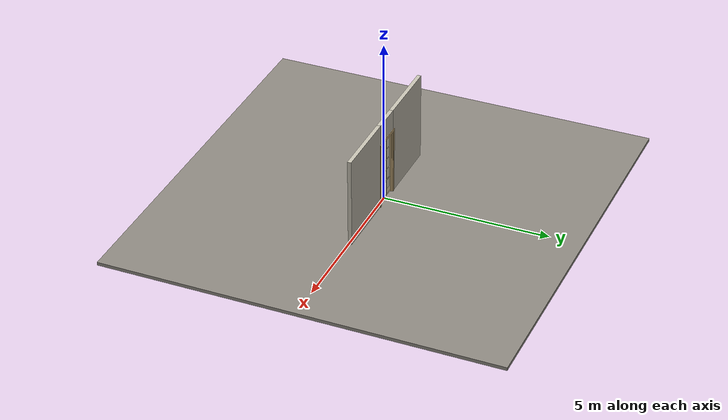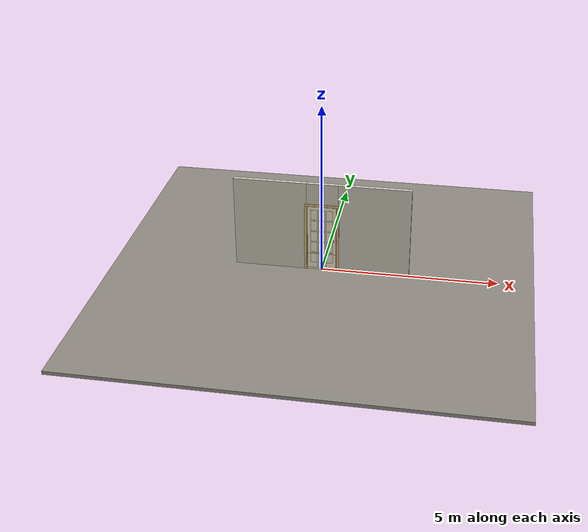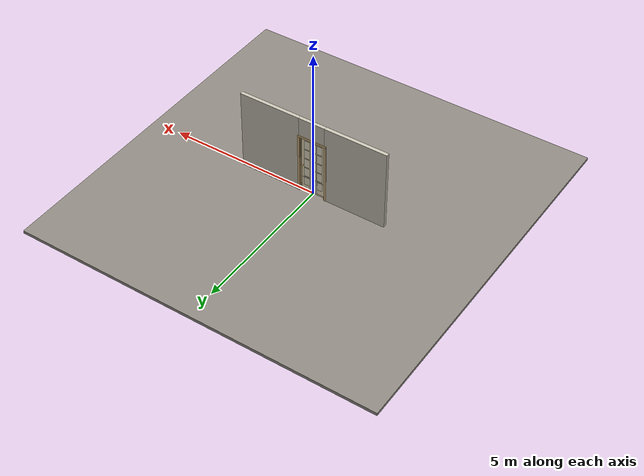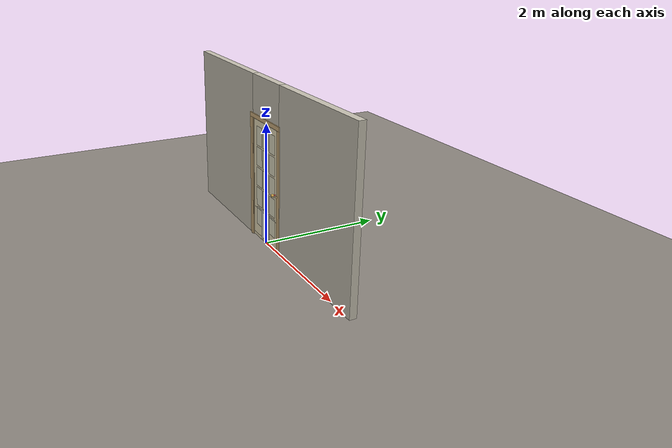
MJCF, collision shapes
<?xml version="1.0" ?>
<mujoco model="db0734_swing_single_full">
  <compiler angle="radian" meshdir="../../hardware" texturedir="../../textures" autolimits="true" inertiafromgeom="false"/>
  <option timestep="0.002" integrator="implicitfast" cone="elliptic" impratio="10" noslip_iterations="3">
    <flag multiccd="enable"/>
  </option>
  <size memory="16M"/>
  <default>
    <geom condim="4" solref="0.005 1" solimp="0.95 0.99 0.001"/>
    <joint solreflimit="0.005 1" solimplimit="0.95 0.99 0.001"/>
    <tendon solreflimit="0.005 1"/>
    <equality solref="0.002 1"/>
  </default>
  <visual>
    <headlight ambient="0.4 0.4 0.4" diffuse="0.7 0.7 0.7" specular="0.2 0.2 0.2"/>
    <quality shadowsize="4096"/>
    <map znear="0.01" zfar="60"/>
  </visual>
  <asset>
    <mesh name="hinge_96510cf394" file="hinge_96510cf394.obj"/>
    <mesh name="hinge_jamb_7fd4ca52b2" file="hinge_jamb_7fd4ca52b2.obj"/>
    <mesh name="knob_d1888f6f03" file="knob_d1888f6f03.obj"/>
    <material name="mat_floor" rgba="0.55 0.53 0.5 1" specular="0.2" shininess="0.15" reflectance="0"/>
    <material name="mat_wall" rgba="0.78 0.76 0.7 1" specular="0.2" shininess="0.1" reflectance="0"/>
    <material name="mat_leaf" rgba="0.93 0.88 0.74 1" specular="0.2" shininess="0.59" reflectance="0"/>
    <material name="mat_glass" rgba="0.85 0.92 0.95 0.25" specular="0.2" shininess="0.95" reflectance="0.1"/>
    <material name="mat_hinge" rgba="0.65 0.66 0.68 1" specular="0.74" shininess="0.5" reflectance="0.36"/>
    <material name="mat_op_brass" rgba="0.85 0.66 0.3 1" specular="0.8" shininess="0.75" reflectance="0.4"/>
    <material name="mat_trim" rgba="0.85 0.66 0.3 1" specular="0.8" shininess="0.75" reflectance="0.4"/>
    <material name="mat_bolt" rgba="0.85 0.66 0.3 1" specular="0.8" shininess="0.75" reflectance="0.4"/>
    <material name="mat_frame" rgba="0.82 0.7 0.5 1" specular="0.2" shininess="0.45" reflectance="0"/>
    <material name="mat_petframe" rgba="0.92 0.92 0.9 1" specular="0.2" shininess="0.6" reflectance="0"/>
    <material name="mat_petflap" rgba="0.85 0.9 0.95 0.45" specular="0.2" shininess="0.7" reflectance="0.1"/>
    <texture name="skybox" type="skybox" builtin="gradient" rgb1="0.6 0.7 0.85" rgb2="0.9 0.92 0.95" width="256" height="256"/>
  </asset>
  <worldbody>
    <light name="sun" pos="1.5 -2.5 4" dir="-0.3 0.5 -0.8" directional="true" diffuse="0.8 0.8 0.8" specular="0.3 0.3 0.3" castshadow="true"/>
    <light name="fill" pos="-1.5 2.5 3" dir="0.3 -0.5 -0.7" directional="true" diffuse="0.35 0.35 0.4" castshadow="false"/>
    <camera name="robot_view" pos="0 -2.465125 1.698475" xyaxes="1 0 0 0 0.26963 0.962964" fovy="52"/>
    <camera name="far_view" pos="0 2.531125 1.698475" xyaxes="-1 0 0 0 -0.26963 0.962964" fovy="52"/>
    <camera name="iso" pos="1.898575 -2.065425 2.098175" xyaxes="0.741536 0.670913 0 -0.242917 0.268487 0.932151" fovy="46"/>
    <camera name="detail_handle" pos="0.526 -0.864 1.245" xyaxes="0.97561 0.219512 0 -0.070934 0.315262 0.94635" fovy="38"/>
    <geom name="floor" type="box" size="6 6 0.05" pos="0 0 -0.05" material="mat_floor" group="0" contype="1" conaffinity="1" friction="0.8 0.005 0.0001" density="2400"/>
    <geom name="wall_left" type="box" size="1.0355 0.0575 1.35" pos="-1.4645 0.033 1.35" material="mat_wall" group="0" contype="1" conaffinity="1" friction="0.6 0.005 0.0001" density="800"/>
    <geom name="wall_right" type="box" size="1.0205 0.0575 1.35" pos="1.4795 0.033 1.35" material="mat_wall" group="0" contype="1" conaffinity="1" friction="0.6 0.005 0.0001" density="800"/>
    <geom name="wall_header" type="box" size="0.444 0.0575 0.3265" pos="0.015 0.033 2.3735" material="mat_wall" group="0" contype="1" conaffinity="1" friction="0.6 0.005 0.0001" density="800"/>
    <geom name="hinge_0_jamb" type="mesh" mesh="hinge_jamb_7fd4ca52b2" pos="-0.407 -0.0245 0.259" material="mat_hinge" group="1" contype="0" conaffinity="0" density="7850"/>
    <geom name="hinge_1_jamb" type="mesh" mesh="hinge_jamb_7fd4ca52b2" pos="-0.407 -0.0245 1.814" material="mat_hinge" group="1" contype="0" conaffinity="0" density="7850"/>
    <geom name="jamb_hinge" type="box" size="0.0095 0.0575 0.999" pos="-0.4195 0.033 0.999" material="mat_frame" group="0" contype="1" conaffinity="1" friction="0.6 0.005 0.0001" density="400"/>
    <geom name="strike_965_wall_n" type="box" size="0.0245 0.041325 0.0167" pos="0.4345 0.049175 0.965" material="mat_frame" group="0" contype="1" conaffinity="1" friction="0.6 0.005 0.0001" density="400"/>
    <geom name="strike_965_wall_p" type="box" size="0.0245 0.008 0.0167" pos="0.4345 -0.01585 0.965" material="mat_frame" group="0" contype="1" conaffinity="1" friction="0.6 0.005 0.0001" density="400"/>
    <geom name="strike_965_ramp" type="box" size="0.0245 0.01649 0.0167" pos="0.439136 -0.028673 0.965" quat="0.977148 0 0 0.212558" material="mat_frame" group="0" contype="1" conaffinity="1" friction="0.12 0.005 0.0001" density="400"/>
    <geom name="strike_965_back" type="box" size="0.01615 0.00785 0.0167" pos="0.44285 0 0.965" material="mat_frame" group="0" contype="1" conaffinity="1" friction="0.6 0.005 0.0001" density="400"/>
    <geom name="jamb_strike_0" type="box" size="0.0245 0.0575 0.47415" pos="0.4345 0.033 0.47415" material="mat_frame" group="0" contype="1" conaffinity="1" friction="0.6 0.005 0.0001" density="400"/>
    <geom name="jamb_strike_1" type="box" size="0.0245 0.0575 0.50815" pos="0.4345 0.033 1.48985" material="mat_frame" group="0" contype="1" conaffinity="1" friction="0.6 0.005 0.0001" density="400"/>
    <geom name="jamb_head" type="box" size="0.444 0.0575 0.0095" pos="0.015 0.033 2.0075" material="mat_frame" group="0" contype="1" conaffinity="1" friction="0.6 0.005 0.0001" density="400"/>
    <geom name="head_stud" type="box" size="0.444 0.0575 0.015" pos="0.015 0.033 2.032" material="mat_wall" group="0" contype="1" conaffinity="1" friction="0.6 0.005 0.0001" density="500"/>
    <geom name="stop_hinge" type="box" size="0.0055 0.016 0.999" pos="-0.4045 0.034 0.999" material="mat_frame" group="0" contype="1" conaffinity="1" friction="0.6 0.005 0.0001" density="400"/>
    <geom name="stop_strike" type="box" size="0.0055 0.016 0.999" pos="0.4045 0.034 0.999" material="mat_frame" group="0" contype="1" conaffinity="1" friction="0.6 0.005 0.0001" density="400"/>
    <geom name="stop_head" type="box" size="0.41 0.016 0.0055" pos="0 0.034 1.9925" material="mat_frame" group="0" contype="1" conaffinity="1" friction="0.6 0.005 0.0001" density="400"/>
    <geom name="casing_l_n" type="box" size="0.035 0.008 1.0085" pos="-0.459 -0.0325 0.999" material="mat_frame" group="2" contype="0" conaffinity="0" density="400"/>
    <geom name="casing_r_n" type="box" size="0.035 0.008 1.0085" pos="0.459 -0.0325 0.999" material="mat_frame" group="2" contype="0" conaffinity="0" density="400"/>
    <geom name="casing_h_n" type="box" size="0.494 0.008 0.035" pos="0 -0.0325 2.047" material="mat_frame" group="2" contype="0" conaffinity="0" density="400"/>
    <geom name="casing_l_p" type="box" size="0.035 0.008 1.0085" pos="-0.459 0.0985 0.999" material="mat_frame" group="2" contype="0" conaffinity="0" density="400"/>
    <geom name="casing_r_p" type="box" size="0.035 0.008 1.0085" pos="0.459 0.0985 0.999" material="mat_frame" group="2" contype="0" conaffinity="0" density="400"/>
    <geom name="casing_h_p" type="box" size="0.494 0.008 0.035" pos="0 0.0985 2.047" material="mat_frame" group="2" contype="0" conaffinity="0" density="400"/>
    <site name="approach_point" pos="0 -1.5 0" quat="1 0 0 0" size="0.05" rgba="0.2 0.9 0.2 0.5" group="4"/>
    <site name="goal_point" pos="0 1.5 0" quat="1 0 0 0" size="0.05" rgba="0.2 0.9 0.2 0.5" group="4"/>
    <site name="door_plane_center" pos="0 0 0.999" quat="1 0 0 0" size="0.02" rgba="0.2 0.9 0.2 0.5" group="4"/>
    <body name="leaf" pos="-0.41 0 0">
      <inertial pos="0.398167 -0.000429 0.814523" mass="21.090726" quat="-0.498812 0.496838 0.503017 0.501311" diaginertia="0.97356736 7.190624443 8.158477931"/>
      <joint name="leaf_hinge" type="hinge" axis="0 0 -1" pos="0.003 -0.0245 0" limited="true" range="0 2.356194" damping="0.206618" frictionloss="0.213533" armature="0.02"/>
      <geom name="leaf_slab_below" type="box" size="0.4065 0.0175 0.0245" pos="0.4095 0 0.0335" material="mat_leaf" group="0" contype="1" conaffinity="1" friction="0.35 0.005 0.0001" density="1"/>
      <geom name="leaf_slab_above" type="box" size="0.4065 0.0175 0.742" pos="0.4095 0 1.252" material="mat_leaf" group="0" contype="1" conaffinity="1" friction="0.35 0.005 0.0001" density="1"/>
      <geom name="leaf_slab_left" type="box" size="0.15775 0.0175 0.226" pos="0.16075 0 0.284" material="mat_leaf" group="0" contype="1" conaffinity="1" friction="0.35 0.005 0.0001" density="1"/>
      <geom name="leaf_slab_right" type="box" size="0.15775 0.0175 0.226" pos="0.65825 0 0.284" material="mat_leaf" group="0" contype="1" conaffinity="1" friction="0.35 0.005 0.0001" density="1"/>
      <geom name="leaf_glass_0" type="box" size="0.0955 0.0183 0.15474" pos="0.1885 0 0.38209" material="mat_glass" group="1" contype="0" conaffinity="0" density="1"/>
      <geom name="leaf_glass_2" type="box" size="0.0955 0.0183 0.15474" pos="0.6305 0 0.38209" material="mat_glass" group="1" contype="0" conaffinity="0" density="1"/>
      <geom name="leaf_glass_3" type="box" size="0.0955 0.0183 0.15474" pos="0.1885 0 0.72157" material="mat_glass" group="1" contype="0" conaffinity="0" density="1"/>
      <geom name="leaf_glass_4" type="box" size="0.0955 0.0183 0.15474" pos="0.4095 0 0.72157" material="mat_glass" group="1" contype="0" conaffinity="0" density="1"/>
      <geom name="leaf_glass_5" type="box" size="0.0955 0.0183 0.15474" pos="0.6305 0 0.72157" material="mat_glass" group="1" contype="0" conaffinity="0" density="1"/>
      <geom name="leaf_glass_6" type="box" size="0.0955 0.0183 0.15474" pos="0.1885 0 1.06105" material="mat_glass" group="1" contype="0" conaffinity="0" density="1"/>
      <geom name="leaf_glass_7" type="box" size="0.0955 0.0183 0.15474" pos="0.4095 0 1.06105" material="mat_glass" group="1" contype="0" conaffinity="0" density="1"/>
      <geom name="leaf_glass_8" type="box" size="0.0955 0.0183 0.15474" pos="0.6305 0 1.06105" material="mat_glass" group="1" contype="0" conaffinity="0" density="1"/>
      <geom name="leaf_glass_9" type="box" size="0.0955 0.0183 0.15474" pos="0.1885 0 1.40053" material="mat_glass" group="1" contype="0" conaffinity="0" density="1"/>
      <geom name="leaf_glass_10" type="box" size="0.0955 0.0183 0.15474" pos="0.4095 0 1.40053" material="mat_glass" group="1" contype="0" conaffinity="0" density="1"/>
      <geom name="leaf_glass_11" type="box" size="0.0955 0.0183 0.15474" pos="0.6305 0 1.40053" material="mat_glass" group="1" contype="0" conaffinity="0" density="1"/>
      <geom name="leaf_glass_12" type="box" size="0.0955 0.0183 0.15474" pos="0.1885 0 1.74001" material="mat_glass" group="1" contype="0" conaffinity="0" density="1"/>
      <geom name="leaf_glass_13" type="box" size="0.0955 0.0183 0.15474" pos="0.4095 0 1.74001" material="mat_glass" group="1" contype="0" conaffinity="0" density="1"/>
      <geom name="leaf_glass_14" type="box" size="0.0955 0.0183 0.15474" pos="0.6305 0 1.74001" material="mat_glass" group="1" contype="0" conaffinity="0" density="1"/>
      <geom name="hinge_0" type="mesh" mesh="hinge_96510cf394" pos="0.003 -0.0245 0.259" material="mat_hinge" group="1" contype="0" conaffinity="0" density="7850"/>
      <geom name="hinge_1" type="mesh" mesh="hinge_96510cf394" pos="0.003 -0.0245 1.814" material="mat_hinge" group="1" contype="0" conaffinity="0" density="7850"/>
      <geom name="leaf_latch_bolt_faceplate" type="box" size="0.0006 0.01235 0.0267" pos="0.8154 0 0.965" material="mat_bolt" group="1" contype="0" conaffinity="0" density="8500"/>
      <geom name="pet_frame_top" type="box" size="0.13 0.0235 0.02" pos="0.4095 0 0.529" material="mat_petframe" group="2" contype="0" conaffinity="0" density="1200"/>
      <geom name="pet_frame_l" type="box" size="0.02 0.0235 0.265" pos="0.2995 0 0.284" material="mat_petframe" group="2" contype="0" conaffinity="0" density="1200"/>
      <geom name="pet_frame_r" type="box" size="0.02 0.0235 0.265" pos="0.5195 0 0.284" material="mat_petframe" group="2" contype="0" conaffinity="0" density="1200"/>
      <site name="leaf_edge_mid" pos="0.816 0 0.9925" quat="1 0 0 0" size="0.02" rgba="0.2 0.9 0.2 0.5" group="4"/>
      <body name="leaf_handle" pos="0.756 0 0.965">
        <inertial pos="0 0 0" mass="1.143961" quat="-0.5 0.5 -0.5 0.5" diaginertia="0.00031237 0.003706292 0.003706292"/>
        <joint name="leaf_handle_hinge" type="hinge" axis="0 -1 0" limited="true" range="0 0.87" damping="0.143613" frictionloss="0.038" stiffness="0.5" springref="-0.5" armature="0.01"/>
        <geom name="leaf_handle_spindle" type="cylinder" size="0.006 0.0255" pos="0 0 0" quat="0.707107 -0.707107 0 0" material="mat_op_brass" group="1" contype="0" conaffinity="0" density="7850"/>
        <geom name="leaf_handle_knob_n" type="mesh" mesh="knob_d1888f6f03" pos="0 -0.0175 0" quat="0.707107 0.707107 0 0" material="mat_op_brass" group="1" contype="0" conaffinity="0" density="3000"/>
        <geom name="leaf_handle_knob_col_n" type="sphere" size="0.0243" pos="0 -0.064 0" material="mat_op_brass" group="0" contype="1" conaffinity="1" friction="0.9 0.01 0.0001" density="3000"/>
        <geom name="leaf_handle_knob_neck_n" type="cylinder" size="0.011 0.012" pos="0 -0.0295 0" quat="0.707107 -0.707107 0 0" material="mat_op_brass" group="3" contype="1" conaffinity="1" rgba="0.8 0.3 0.3 0.25" friction="0.6 0.005 0.0001" density="3000"/>
        <geom name="leaf_handle_knob_p" type="mesh" mesh="knob_d1888f6f03" pos="0 0.0175 0" quat="-0.707107 0.707107 0 0" material="mat_op_brass" group="1" contype="0" conaffinity="0" density="3000"/>
        <geom name="leaf_handle_knob_col_p" type="sphere" size="0.0243" pos="0 0.064 0" material="mat_op_brass" group="0" contype="1" conaffinity="1" friction="0.9 0.01 0.0001" density="3000"/>
        <geom name="leaf_handle_knob_neck_p" type="cylinder" size="0.011 0.012" pos="0 0.0295 0" quat="0.707107 -0.707107 0 0" material="mat_op_brass" group="3" contype="1" conaffinity="1" rgba="0.8 0.3 0.3 0.25" friction="0.6 0.005 0.0001" density="3000"/>
        <site name="leaf_handle_grip_n" pos="0 -0.064 0" quat="1 0 0 0" size="0.012" rgba="0.2 0.9 0.2 0.5" group="4"/>
        <site name="leaf_handle_grip_p" pos="0 0.064 0" quat="1 0 0 0" size="0.012" rgba="0.2 0.9 0.2 0.5" group="4"/>
      </body>
      <body name="leaf_latch_bolt" pos="0.816 0 0.965">
        <inertial pos="-0.00865 0 0" mass="0.041419" quat="0.92388 -0.382683 0 0" diaginertia="0.000000798 0.000005598 0.000005598"/>
        <joint name="leaf_latch_bolt_slide" type="slide" axis="-1 0 0" limited="true" range="0 0.0127" damping="2" frictionloss="0.3" stiffness="300" springref="-0.008333" armature="0.1"/>
        <geom name="leaf_latch_bolt_capsule" type="capsule" size="0.00635 0.015" pos="-0.00865 0 0" quat="0.707107 0 0.707107 0" material="mat_bolt" group="0" contype="1" conaffinity="1" friction="0.2 0.005 0.0001" density="8500"/>
      </body>
      <body name="pet_flap" pos="0.4095 0 0.509">
        <inertial pos="0 0 -0.225" mass="0.074223" quat="-0.5 0.5 0.5 0.5" diaginertia="0.000183083 0.00120847 0.001391354"/>
        <joint name="pet_flap_hinge" type="hinge" axis="1 0 0" limited="true" range="-1.45 1.45" damping="0.02" frictionloss="0.02" armature="0.005"/>
        <geom name="pet_flap_geom" type="box" size="0.086 0.002 0.221" pos="0 0 -0.225" material="mat_petflap" group="0" contype="1" conaffinity="1" friction="0.6 0.005 0.0001" density="1250"/>
      </body>
    </body>
  </worldbody>
  <tendon>
    <fixed name="leaf_latch_bolt_coupling" limited="true" range="0 10">
      <joint joint="leaf_latch_bolt_slide" coef="1"/>
      <joint joint="leaf_handle_hinge" coef="-0.015679"/>
    </fixed>
  </tendon>
  <sensor>
    <jointpos name="leaf_hinge_pos" joint="leaf_hinge"/>
    <jointvel name="leaf_hinge_vel" joint="leaf_hinge"/>
    <jointpos name="leaf_handle_hinge_pos" joint="leaf_handle_hinge"/>
    <jointvel name="leaf_handle_hinge_vel" joint="leaf_handle_hinge"/>
    <jointpos name="leaf_latch_bolt_slide_pos" joint="leaf_latch_bolt_slide"/>
    <jointvel name="leaf_latch_bolt_slide_vel" joint="leaf_latch_bolt_slide"/>
    <jointpos name="pet_flap_hinge_pos" joint="pet_flap_hinge"/>
    <jointvel name="pet_flap_hinge_vel" joint="pet_flap_hinge"/>
  </sensor>
</mujoco>
